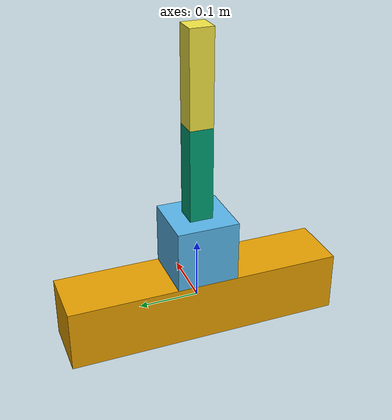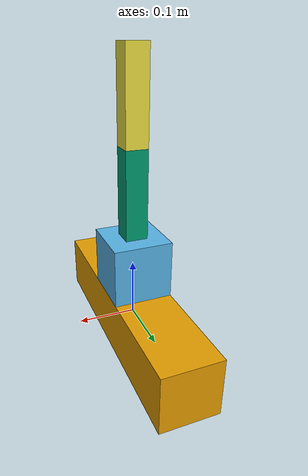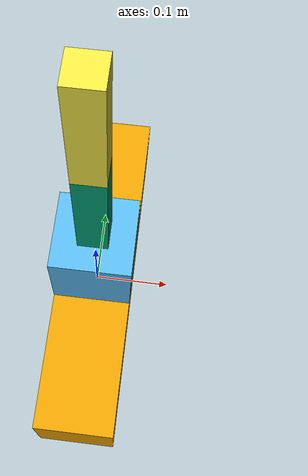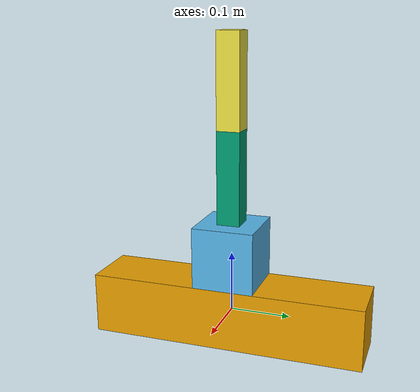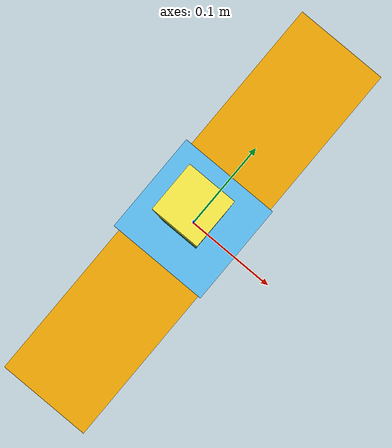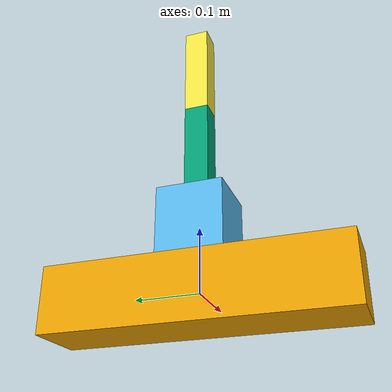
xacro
<?xml version="1.0"?>

<robot xmlns:xacro="http://www.ros.org/wiki/xacro" name="nu_urc_arm">

<!-- PI constant -->
<xacro:property name="pi" value="3.1415926" />

<!-- The dimensions of the arm base's linear rail system -->
<xacro:property name="arm_prism_base_l" value="0.4572" />
<xacro:property name="arm_prism_base_w" value="0.1016" />
<xacro:property name="arm_prism_base_h" value="0.1016" />

<!-- The dimensions of the arm base's swivel system -->
<xacro:property name="arm_swivel_base_l" value="0.1016" />
<xacro:property name="arm_swivel_base_w" value="0.1016" />
<xacro:property name="arm_swivel_base_h" value="0.1016" />

<!-- The dimensions of first arm link -->
<!-- The two revolute arm links are the same length at around 9.5 inches -->
<xacro:property name="arm_rot_0_l" value="0.1524" />
<xacro:property name="arm_rot_0_w" value="0.0381" />
<xacro:property name="arm_rot_0_h" value="0.0381" />

<!-- The dimensions of the second arm link -->
<!-- The two revolute arm links are the same length at around 9.5 inches -->
<xacro:property name="arm_rot_1_l" value="0.1524" />
<xacro:property name="arm_rot_1_w" value="0.0381" />
<xacro:property name="arm_rot_1_h" value="0.0381" />

<!-- The displacement of first arm link with respect to the swivel base -->
<xacro:property name="arm_prism_base_swivel_base_h" value="${(arm_prism_base_h+arm_swivel_base_h)/2}" />
<xacro:property name="arm_swivel_base_rot_0_h" value="${arm_swivel_base_h/2}" />

<!-- Joint Limits -->
<xacro:property name="arm_swivel_base_rot_0_lower" value="0" />
<xacro:property name="arm_swivel_base_rot_0_upper" value="${pi}" />
<xacro:property name="arm_rot_0_1_lower" value="0" />
<xacro:property name="arm_rot_0_1_upper" value="${pi}" />

<link name="arm_prism_base">
  <visual>
    <geometry>
      <box size="${arm_prism_base_w} ${arm_prism_base_l} ${arm_prism_base_h}" />
      <origin rpy="0.0 0.0 0.0" xyz="0.0 0.0 0.0" />
    </geometry>
  </visual>
</link>

<link name="arm_swivel_base">
  <visual>
    <geometry>
      <box size="${arm_swivel_base_w} ${arm_swivel_base_h} ${arm_swivel_base_l}" />
      <origin rpy="0.0 0.0 0.0" xyz="0.0 0.0 0.0" />
    </geometry>
  </visual>
</link>

<link name="arm_rot_0">
  <visual>
    <geometry>
      <box size="${arm_rot_0_w} ${arm_rot_0_h} ${arm_rot_0_l}" />
    </geometry>
   <origin rpy="0.0 0.0 0.0" xyz="0.0 0.0 ${arm_rot_0_l/2}" />
  </visual>
</link>

<link name="arm_rot_1">
  <visual>
    <geometry>
      <box size="${arm_rot_1_w} ${arm_rot_1_h} ${arm_rot_1_l}" />
    </geometry>
    <origin rpy="0.0 0.0 0.0" xyz="0.0 0.0 ${arm_rot_1_l/2}" />
  </visual>
</link>

<joint name="arm_prism_base_swivel_base" type="continuous">
  <parent link="arm_prism_base" />
  <child link="arm_swivel_base" />
  <origin xyz="0.0 0.0 ${arm_prism_base_swivel_base_h}" rpy="0.0 0.0 0.0" />
  <axis xyz="0 0 1" />
</joint>

<joint name="arm_swivel_base_rot_0" type="revolute">
  <parent link="arm_swivel_base" />
  <child link="arm_rot_0" />
  <origin xyz="0.0 0.0 ${arm_swivel_base_rot_0_h}" rpy="0.0 0.0 0.0" />
  <axis xyz="0 1 0" />
  <limit lower="${arm_swivel_base_rot_0_lower}" upper="${arm_swivel_base_rot_0_upper}" effort="1000.0" velocity="${pi}" />
</joint>

<joint name="arm_rot_0_1" type="revolute">
  <parent link="arm_rot_0" />
  <child link="arm_rot_1" />
  <origin xyz="0.0 0.0 ${arm_rot_0_l}" rpy="0.0 0.0 0.0" />
  <axis xyz="0 1 0" />
  <limit lower="${arm_rot_0_1_lower}" upper="${arm_rot_0_1_upper}" effort="1000.0" velocity="${pi}" />
</joint>

</robot>
